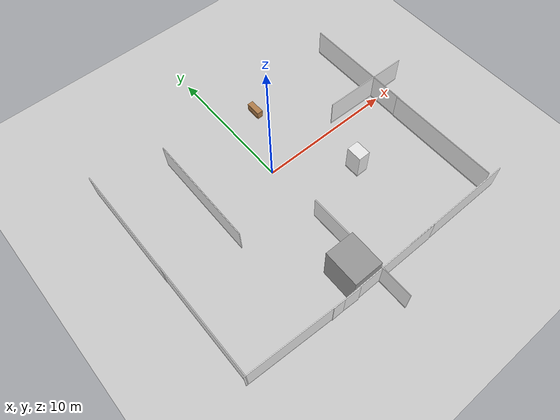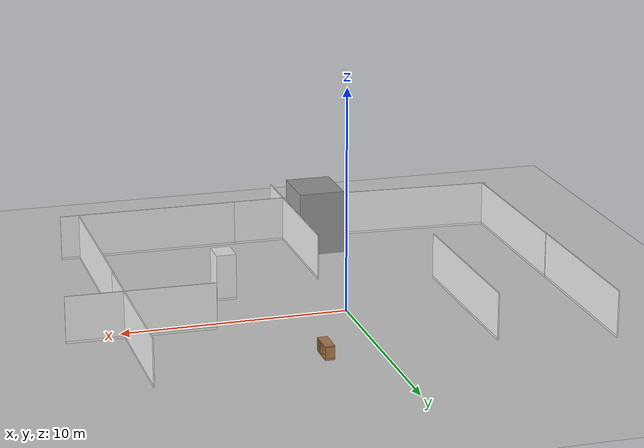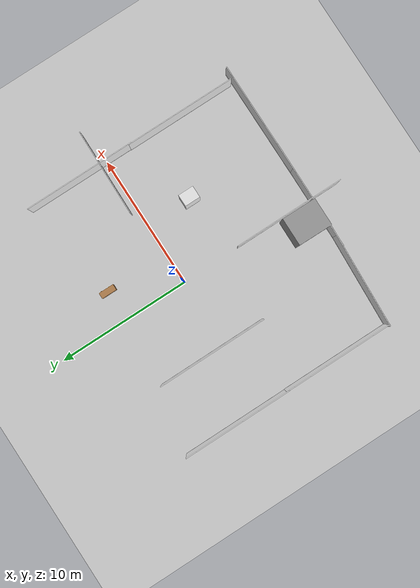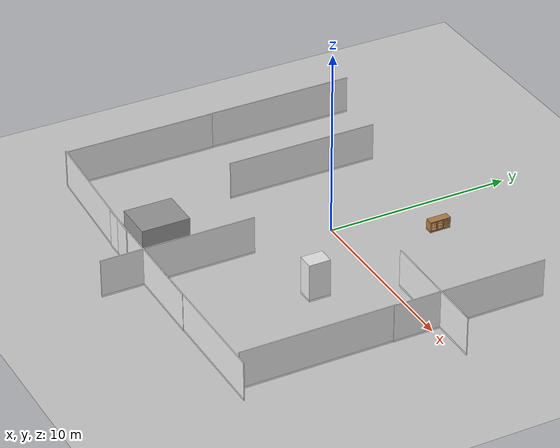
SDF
<sdf version="1.7">
 <world name="default">
  <model name="ground_plane">
   <static>1</static>
   <link name="link">
    <collision name="collision">
     <geometry><plane><normal>0 0 1</normal><size>100 100</size></plane></geometry>
     <surface><friction><ode><mu>100</mu><mu2>50</mu2></ode></friction></surface>
    </collision>
    <visual name="visual">
     <cast_shadows>0</cast_shadows>
     <geometry><plane><normal>0 0 1</normal><size>100 100</size></plane></geometry>
     <material>
      <script><uri>file://media/materials/scripts/gazebo.material</uri><name>Gazebo/Grey</name></script>
     </material>
    </visual>
   </link>
  </model>
  <model name="full_wall_55_8295_2090">
   <link name="link">
    <inertial>
     <mass>50</mass>
     <inertia><ixx>1</ixx><ixy>0</ixy><ixz>0</ixz><iyy>1</iyy><iyz>0</iyz><izz>1</izz></inertia>
    </inertial>
    <visual name="bottom_frame">
     <pose>0 0 0.05 0 -0 0</pose>
     <geometry><box><size>0.055 8.295 0.1</size></box></geometry>
     <material>
      <script><uri>model://base_materials/color/scripts</uri><name>hsr_color/white</name></script>
     </material>
    </visual>
    <collision name="collision_bottom_frame">
     <pose>0 0 0.05 0 -0 0</pose>
     <geometry><box><size>0.055 8.295 0.1</size></box></geometry>
    </collision>
    <visual name="wall">
     <pose>0 0 1.095 0 -0 0</pose>
     <geometry><box><size>0.055 8.295 1.99</size></box></geometry>
     <material>
      <script>
       <uri>model://base_materials/wall/scripts</uri>
       <uri>model://base_materials/wall/textures</uri>
       <name>wall/white_noise</name>
      </script>
     </material>
    </visual>
    <collision name="collision_wall">
     <pose>0 0 1.095 0 -0 0</pose>
     <geometry><box><size>0.055 8.295 1.99</size></box></geometry>
    </collision>
    <velocity_decay><linear>0</linear><angular>0</angular></velocity_decay>
   </link>
   <static>1</static>
   <pose>9.84628 -6.03744 0 0 -0 0</pose>
  </model>
  <model name="full_wall_55_8295_2090_0">
   <link name="link">
    <inertial>
     <mass>50</mass>
     <inertia><ixx>1</ixx><ixy>0</ixy><ixz>0</ixz><iyy>1</iyy><iyz>0</iyz><izz>1</izz></inertia>
    </inertial>
    <visual name="bottom_frame">
     <pose>0 0 0.05 0 -0 0</pose>
     <geometry><box><size>0.055 8.295 0.1</size></box></geometry>
     <material>
      <script><uri>model://base_materials/color/scripts</uri><name>hsr_color/white</name></script>
     </material>
    </visual>
    <collision name="collision_bottom_frame">
     <pose>0 0 0.05 0 -0 0</pose>
     <geometry><box><size>0.055 8.295 0.1</size></box></geometry>
    </collision>
    <visual name="wall">
     <pose>0 0 1.095 0 -0 0</pose>
     <geometry><box><size>0.055 8.295 1.99</size></box></geometry>
     <material>
      <script>
       <uri>model://base_materials/wall/scripts</uri>
       <uri>model://base_materials/wall/textures</uri>
       <name>wall/white_noise</name>
      </script>
     </material>
    </visual>
    <collision name="collision_wall">
     <pose>0 0 1.095 0 -0 0</pose>
     <geometry><box><size>0.055 8.295 1.99</size></box></geometry>
    </collision>
    <velocity_decay><linear>0</linear><angular>0</angular></velocity_decay>
   </link>
   <static>1</static>
   <pose>-9.9613 -5.86191 0 0 -0 0</pose>
  </model>
  <model name="full_wall_55_8295_2090_1">
   <link name="link">
    <inertial>
     <mass>50</mass>
     <inertia><ixx>1</ixx><ixy>0</ixy><ixz>0</ixz><iyy>1</iyy><iyz>0</iyz><izz>1</izz></inertia>
    </inertial>
    <visual name="bottom_frame">
     <pose>0 0 0.05 0 -0 0</pose>
     <geometry><box><size>0.055 8.295 0.1</size></box></geometry>
     <material>
      <script><uri>model://base_materials/color/scripts</uri><name>hsr_color/white</name></script>
     </material>
    </visual>
    <collision name="collision_bottom_frame">
     <pose>0 0 0.05 0 -0 0</pose>
     <geometry><box><size>0.055 8.295 0.1</size></box></geometry>
    </collision>
    <visual name="wall">
     <pose>0 0 1.095 0 -0 0</pose>
     <geometry><box><size>0.055 8.295 1.99</size></box></geometry>
     <material>
      <script>
       <uri>model://base_materials/wall/scripts</uri>
       <uri>model://base_materials/wall/textures</uri>
       <name>wall/white_noise</name>
      </script>
     </material>
    </visual>
    <collision name="collision_wall">
     <pose>0 0 1.095 0 -0 0</pose>
     <geometry><box><size>0.055 8.295 1.99</size></box></geometry>
    </collision>
    <velocity_decay><linear>0</linear><angular>0</angular></velocity_decay>
   </link>
   <static>1</static>
   <pose>9.87734 2.07434 0 0 -0 0</pose>
  </model>
  <model name="full_wall_55_8295_2090_2">
   <link name="link">
    <inertial>
     <mass>50</mass>
     <inertia><ixx>1</ixx><ixy>0</ixy><ixz>0</ixz><iyy>1</iyy><iyz>0</iyz><izz>1</izz></inertia>
    </inertial>
    <visual name="bottom_frame">
     <pose>0 0 0.05 0 -0 0</pose>
     <geometry><box><size>0.055 8.295 0.1</size></box></geometry>
     <material>
      <script><uri>model://base_materials/color/scripts</uri><name>hsr_color/white</name></script>
     </material>
    </visual>
    <collision name="collision_bottom_frame">
     <pose>0 0 0.05 0 -0 0</pose>
     <geometry><box><size>0.055 8.295 0.1</size></box></geometry>
    </collision>
    <visual name="wall">
     <pose>0 0 1.095 0 -0 0</pose>
     <geometry><box><size>0.055 8.295 1.99</size></box></geometry>
     <material>
      <script>
       <uri>model://base_materials/wall/scripts</uri>
       <uri>model://base_materials/wall/textures</uri>
       <name>wall/white_noise</name>
      </script>
     </material>
    </visual>
    <collision name="collision_wall">
     <pose>0 0 1.095 0 -0 0</pose>
     <geometry><box><size>0.055 8.295 1.99</size></box></geometry>
    </collision>
    <velocity_decay><linear>0</linear><angular>0</angular></velocity_decay>
   </link>
   <static>1</static>
   <pose>-9.98318 2.18072 0 0 -0 0</pose>
  </model>
  <model name="full_wall_55_8295_2090_3">
   <link name="link">
    <inertial>
     <mass>50</mass>
     <inertia><ixx>1</ixx><ixy>0</ixy><ixz>0</ixz><iyy>1</iyy><iyz>0</iyz><izz>1</izz></inertia>
    </inertial>
    <visual name="bottom_frame">
     <pose>0 0 0.05 0 -0 0</pose>
     <geometry><box><size>0.055 8.295 0.1</size></box></geometry>
     <material>
      <script><uri>model://base_materials/color/scripts</uri><name>hsr_color/white</name></script>
     </material>
    </visual>
    <collision name="collision_bottom_frame">
     <pose>0 0 0.05 0 -0 0</pose>
     <geometry><box><size>0.055 8.295 0.1</size></box></geometry>
    </collision>
    <visual name="wall">
     <pose>0 0 1.095 0 -0 0</pose>
     <geometry><box><size>0.055 8.295 1.99</size></box></geometry>
     <material>
      <script>
       <uri>model://base_materials/wall/scripts</uri>
       <uri>model://base_materials/wall/textures</uri>
       <name>wall/white_noise</name>
      </script>
     </material>
    </visual>
    <collision name="collision_wall">
     <pose>0 0 1.095 0 -0 0</pose>
     <geometry><box><size>0.055 8.295 1.99</size></box></geometry>
    </collision>
    <velocity_decay><linear>0</linear><angular>0</angular></velocity_decay>
   </link>
   <static>1</static>
   <pose>-5.95162 -10.1806 0 0 0 -1.62137</pose>
  </model>
  <model name="full_wall_55_8295_2090_4">
   <link name="link">
    <inertial>
     <mass>50</mass>
     <inertia><ixx>1</ixx><ixy>0</ixy><ixz>0</ixz><iyy>1</iyy><iyz>0</iyz><izz>1</izz></inertia>
    </inertial>
    <visual name="bottom_frame">
     <pose>0 0 0.05 0 -0 0</pose>
     <geometry><box><size>0.055 8.295 0.1</size></box></geometry>
     <material>
      <script><uri>model://base_materials/color/scripts</uri><name>hsr_color/white</name></script>
     </material>
    </visual>
    <collision name="collision_bottom_frame">
     <pose>0 0 0.05 0 -0 0</pose>
     <geometry><box><size>0.055 8.295 0.1</size></box></geometry>
    </collision>
    <visual name="wall">
     <pose>0 0 1.095 0 -0 0</pose>
     <geometry><box><size>0.055 8.295 1.99</size></box></geometry>
     <material>
      <script>
       <uri>model://base_materials/wall/scripts</uri>
       <uri>model://base_materials/wall/textures</uri>
       <name>wall/white_noise</name>
      </script>
     </material>
    </visual>
    <collision name="collision_wall">
     <pose>0 0 1.095 0 -0 0</pose>
     <geometry><box><size>0.055 8.295 1.99</size></box></geometry>
    </collision>
    <velocity_decay><linear>0</linear><angular>0</angular></velocity_decay>
   </link>
   <static>1</static>
   <pose>0.287019 -10.3536 0 0 -0 1.56373</pose>
  </model>
  <model name="full_wall_55_8295_2090_5">
   <link name="link">
    <inertial>
     <mass>50</mass>
     <inertia><ixx>1</ixx><ixy>0</ixy><ixz>0</ixz><iyy>1</iyy><iyz>0</iyz><izz>1</izz></inertia>
    </inertial>
    <visual name="bottom_frame">
     <pose>0 0 0.05 0 -0 0</pose>
     <geometry><box><size>0.055 8.295 0.1</size></box></geometry>
     <material>
      <script><uri>model://base_materials/color/scripts</uri><name>hsr_color/white</name></script>
     </material>
    </visual>
    <collision name="collision_bottom_frame">
     <pose>0 0 0.05 0 -0 0</pose>
     <geometry><box><size>0.055 8.295 0.1</size></box></geometry>
    </collision>
    <visual name="wall">
     <pose>0 0 1.095 0 -0 0</pose>
     <geometry><box><size>0.055 8.295 1.99</size></box></geometry>
     <material>
      <script>
       <uri>model://base_materials/wall/scripts</uri>
       <uri>model://base_materials/wall/textures</uri>
       <name>wall/white_noise</name>
      </script>
     </material>
    </visual>
    <collision name="collision_wall">
     <pose>0 0 1.095 0 -0 0</pose>
     <geometry><box><size>0.055 8.295 1.99</size></box></geometry>
    </collision>
    <velocity_decay><linear>0</linear><angular>0</angular></velocity_decay>
   </link>
   <static>1</static>
   <pose>6.56133 -10.3648 0 0 0 -1.57045</pose>
  </model>
  <model name="full_wall_55_6475_2090_1">
   <link name="link">
    <inertial>
     <mass>50</mass>
     <inertia><ixx>1</ixx><ixy>0</ixy><ixz>0</ixz><iyy>1</iyy><iyz>0</iyz><izz>1</izz></inertia>
    </inertial>
    <visual name="bottom_frame">
     <pose>0 0 0.05 0 -0 0</pose>
     <geometry><box><size>0.055 6.475 0.1</size></box></geometry>
     <material>
      <script><uri>model://base_materials/color/scripts</uri><name>hsr_color/white</name></script>
     </material>
    </visual>
    <collision name="collision_bottom_frame">
     <pose>0 0 0.05 0 -0 0</pose>
     <geometry><box><size>0.055 6.475 0.1</size></box></geometry>
    </collision>
    <visual name="wall">
     <pose>0 0 1.095 0 -0 0</pose>
     <geometry><box><size>0.055 6.475 1.99</size></box></geometry>
     <material>
      <script>
       <uri>model://base_materials/wall/scripts</uri>
       <uri>model://base_materials/wall/textures</uri>
       <name>wall/white_noise</name>
      </script>
     </material>
    </visual>
    <collision name="collision_wall">
     <pose>0 0 1.095 0 -0 0</pose>
     <geometry><box><size>0.055 6.475 1.99</size></box></geometry>
    </collision>
    <velocity_decay><linear>0</linear><angular>0</angular></velocity_decay>
   </link>
   <static>1</static>
   <pose>9.15817 0.489889 0 0 -0 1.5553</pose>
  </model>
  <model name="full_wall_55_8295_2090_10">
   <link name="link">
    <inertial>
     <mass>50</mass>
     <inertia><ixx>1</ixx><ixy>0</ixy><ixz>0</ixz><iyy>1</iyy><iyz>0</iyz><izz>1</izz></inertia>
    </inertial>
    <visual name="bottom_frame">
     <pose>0 0 0.05 0 -0 0</pose>
     <geometry><box><size>0.055 8.295 0.1</size></box></geometry>
     <material>
      <script><uri>model://base_materials/color/scripts</uri><name>hsr_color/white</name></script>
     </material>
    </visual>
    <collision name="collision_bottom_frame">
     <pose>0 0 0.05 0 -0 0</pose>
     <geometry><box><size>0.055 8.295 0.1</size></box></geometry>
    </collision>
    <visual name="wall">
     <pose>0 0 1.095 0 -0 0</pose>
     <geometry><box><size>0.055 8.295 1.99</size></box></geometry>
     <material>
      <script>
       <uri>model://base_materials/wall/scripts</uri>
       <uri>model://base_materials/wall/textures</uri>
       <name>wall/white_noise</name>
      </script>
     </material>
    </visual>
    <collision name="collision_wall">
     <pose>0 0 1.095 0 -0 0</pose>
     <geometry><box><size>0.055 8.295 1.99</size></box></geometry>
    </collision>
    <velocity_decay><linear>0</linear><angular>0</angular></velocity_decay>
   </link>
   <static>1</static>
   <pose>0.014205 -8.48633 0 0 -0 0</pose>
  </model>
  <model name="full_wall_55_8295_2090_11">
   <link name="link">
    <inertial>
     <mass>50</mass>
     <inertia><ixx>1</ixx><ixy>0</ixy><ixz>0</ixz><iyy>1</iyy><iyz>0</iyz><izz>1</izz></inertia>
    </inertial>
    <visual name="bottom_frame">
     <pose>0 0 0.05 0 -0 0</pose>
     <geometry><box><size>0.055 8.295 0.1</size></box></geometry>
     <material>
      <script><uri>model://base_materials/color/scripts</uri><name>hsr_color/white</name></script>
     </material>
    </visual>
    <collision name="collision_bottom_frame">
     <pose>0 0 0.05 0 -0 0</pose>
     <geometry><box><size>0.055 8.295 0.1</size></box></geometry>
    </collision>
    <visual name="wall">
     <pose>0 0 1.095 0 -0 0</pose>
     <geometry><box><size>0.055 8.295 1.99</size></box></geometry>
     <material>
      <script>
       <uri>model://base_materials/wall/scripts</uri>
       <uri>model://base_materials/wall/textures</uri>
       <name>wall/white_noise</name>
      </script>
     </material>
    </visual>
    <collision name="collision_wall">
     <pose>0 0 1.095 0 -0 0</pose>
     <geometry><box><size>0.055 8.295 1.99</size></box></geometry>
    </collision>
    <velocity_decay><linear>0</linear><angular>0</angular></velocity_decay>
   </link>
   <static>1</static>
   <pose>-5.06381 1.03116 0 0 -0 0</pose>
  </model>
  <model name="unit_box">
   <pose>-1.17645 -9.03631 1.48483 -3e-06 -0 -0.007073</pose>
   <link name="link">
    <inertial>
     <mass>1</mass>
     <inertia>
      <ixx>0.166667</ixx>
      <ixy>0</ixy>
      <ixz>0</ixz>
      <iyy>0.166667</iyy>
      <iyz>0</iyz>
      <izz>0.166667</izz>
     </inertia>
    </inertial>
    <collision name="collision"><geometry><box><size>2.0992 2.5587 2.96967</size></box></geometry></collision>
    <visual name="visual">
     <geometry><box><size>2.0992 2.5587 2.96967</size></box></geometry>
     <material>
      <script><name>Gazebo/Grey</name><uri>file://media/materials/scripts/gazebo.material</uri></script>
     </material>
    </visual>
   </link>
  </model>
  <model name="living_sideboard">
   <link name="link">
    <inertial>
     <mass>10</mass>
     <inertia><ixx>1</ixx><ixy>0</ixy><ixz>0</ixz><iyy>1</iyy><iyz>0</iyz><izz>1</izz></inertia>
    </inertial>
    <visual name="left_board">
     <pose>-0.23 0.01 0.3375 0 -0 0</pose>
     <geometry><box><size>0.42 0.02 0.495</size></box></geometry>
     <material>
      <script><uri>model://base_materials/wood/scripts/wood.material</uri><name>base_materials/wood</name></script>
     </material>
    </visual>
    <collision name="collision_left_board">
     <pose>-0.23 0.01 0.3375 0 -0 0</pose>
     <geometry><box><size>0.42 0.02 0.495</size></box></geometry>
    </collision>
    <visual name="back_board">
     <pose>-0.42 0.575 0.2925 0 -0 0</pose>
     <geometry><box><size>0.02 1.11 0.585</size></box></geometry>
     <material>
      <script><uri>model://base_materials/wood/scripts/wood.material</uri><name>base_materials/wood</name></script>
     </material>
    </visual>
    <collision name="collision_back_board">
     <pose>-0.42 0.575 0.2925 0 -0 0</pose>
     <geometry><box><size>0.02 1.11 0.585</size></box></geometry>
    </collision>
    <visual name="right_board">
     <pose>-0.23 1.14 0.3375 0 -0 0</pose>
     <geometry><box><size>0.42 0.02 0.495</size></box></geometry>
     <material>
      <script><uri>model://base_materials/wood/scripts/wood.material</uri><name>base_materials/wood</name></script>
     </material>
    </visual>
    <collision name="collision_right_board">
     <pose>-0.23 1.14 0.3375 0 -0 0</pose>
     <geometry><box><size>0.42 0.02 0.495</size></box></geometry>
    </collision>
    <visual name="center_vertical_board1">
     <pose>-0.23 0.74 0.3375 0 -0 0</pose>
     <geometry><box><size>0.42 0.02 0.495</size></box></geometry>
     <material>
      <script><uri>model://base_materials/wood/scripts/wood.material</uri><name>base_materials/wood</name></script>
     </material>
    </visual>
    <collision name="collision_center_vertical_board1">
     <pose>-0.23 0.74 0.3375 0 -0 0</pose>
     <geometry><box><size>0.42 0.02 0.495</size></box></geometry>
    </collision>
    <visual name="top_board">
     <pose>-0.22 0.575 0.6 0 -0 0</pose>
     <geometry><box><size>0.44 1.15 0.03</size></box></geometry>
     <material>
      <script><uri>model://base_materials/wood/scripts/wood.material</uri><name>base_materials/wood</name></script>
     </material>
    </visual>
    <collision name="collision_top_board">
     <pose>-0.22 0.575 0.6 0 -0 0</pose>
     <geometry><box><size>0.44 1.15 0.03</size></box></geometry>
    </collision>
    <visual name="bottom_board">
     <pose>-0.23 0.575 0.045 0 -0 0</pose>
     <geometry><box><size>0.42 1.15 0.09</size></box></geometry>
     <material>
      <script><uri>model://base_materials/wood/scripts/wood.material</uri><name>base_materials/wood</name></script>
     </material>
    </visual>
    <collision name="collision_bottom_board">
     <pose>-0.23 0.575 0.045 0 -0 0</pose>
     <geometry><box><size>0.42 1.15 0.09</size></box></geometry>
    </collision>
    <visual name="1st_shelf">
     <pose>-0.225 0.37 0.259 0 -0 0</pose>
     <geometry><box><size>0.36 0.72 0.018</size></box></geometry>
     <material>
      <script><uri>model://base_materials/wood/scripts/wood.material</uri><name>base_materials/wood</name></script>
     </material>
    </visual>
    <collision name="collision_1st_shelf">
     <pose>-0.225 0.37 0.259 0 -0 0</pose>
     <geometry><box><size>0.36 0.72 0.018</size></box></geometry>
    </collision>
    <visual name="2nd_shelf">
     <pose>-0.225 0.37 0.407 0 -0 0</pose>
     <geometry><box><size>0.36 0.72 0.018</size></box></geometry>
     <material>
      <script><uri>model://base_materials/wood/scripts/wood.material</uri><name>base_materials/wood</name></script>
     </material>
    </visual>
    <collision name="collision_2nd_shelf">
     <pose>-0.225 0.37 0.407 0 -0 0</pose>
     <geometry><box><size>0.36 0.72 0.018</size></box></geometry>
    </collision>
    <visual name="1st_drawer">
     <pose>-0.2025 0.95 0.52 0 -0 0</pose>
     <geometry><box><size>0.405 0.38 0.13</size></box></geometry>
     <material>
      <script><uri>model://base_materials/wood/scripts/wood.material</uri><name>base_materials/wood</name></script>
     </material>
    </visual>
    <collision name="collision_1st_drawer">
     <pose>-0.2025 0.95 0.52 0 -0 0</pose>
     <geometry><box><size>0.405 0.38 0.13</size></box></geometry>
    </collision>
    <visual name="1st_drawer_handle_l1">
     <pose>0.015 0.9015 0.535 3.14159 1.57079 3.14159</pose>
     <geometry><cylinder><radius>0.006</radius><length>0.03</length></cylinder></geometry>
     <material>
      <ambient>1 0.84314 0 1</ambient>
      <diffuse>1 0.84314 0 1</diffuse>
      <specular>0.1 0.1 0.1 1</specular>
     </material>
    </visual>
    <collision name="collision_1st_drawer_handle_l1">
     <pose>0.015 0.9015 0.535 3.14159 1.57079 3.14159</pose>
     <geometry><cylinder><radius>0.006</radius><length>0.03</length></cylinder></geometry>
    </collision>
    <visual name="1st_drawer_handle_l2">
     <pose>0.03 0.9015 0.535 0 -0 0</pose>
     <geometry><sphere><radius>0.006</radius></sphere></geometry>
     <material>
      <ambient>1 0.84314 0 1</ambient>
      <diffuse>1 0.84314 0 1</diffuse>
      <specular>0.1 0.1 0.1 1</specular>
     </material>
    </visual>
    <collision name="collision_1st_drawer_handle_l2">
     <pose>0.03 0.9015 0.535 0 -0 0</pose>
     <geometry><sphere><radius>0.006</radius></sphere></geometry>
    </collision>
    <visual name="1st_drawer_handle_r1">
     <pose>0.015 0.9985 0.535 3.14159 1.57079 3.14159</pose>
     <geometry><cylinder><radius>0.006</radius><length>0.03</length></cylinder></geometry>
     <material>
      <ambient>1 0.84314 0 1</ambient>
      <diffuse>1 0.84314 0 1</diffuse>
      <specular>0.1 0.1 0.1 1</specular>
     </material>
    </visual>
    <collision name="collision_1st_drawer_handle_r1">
     <pose>0.015 0.9985 0.535 3.14159 1.57079 3.14159</pose>
     <geometry><cylinder><radius>0.006</radius><length>0.03</length></cylinder></geometry>
    </collision>
    <visual name="1st_drawer_handle_r2">
     <pose>0.03 0.9985 0.535 0 -0 0</pose>
     <geometry><sphere><radius>0.006</radius></sphere></geometry>
     <material>
      <ambient>1 0.84314 0 1</ambient>
      <diffuse>1 0.84314 0 1</diffuse>
      <specular>0.1 0.1 0.1 1</specular>
     </material>
    </visual>
    <collision name="collision_1st_drawer_handle_r2">
     <pose>0.03 0.9985 0.535 0 -0 0</pose>
     <geometry><sphere><radius>0.006</radius></sphere></geometry>
    </collision>
    <visual name="1st_drawer_handle_center">
     <pose>0.03 0.95 0.535 1.5708 -0 0</pose>
     <geometry><cylinder><radius>0.006</radius><length>0.097</length></cylinder></geometry>
     <material>
      <script><uri>model://base_materials/wood/scripts/wood.material</uri><name>base_materials/wood</name></script>
     </material>
    </visual>
    <collision name="collision_1st_drawer_handle_center">
     <pose>0.03 0.95 0.535 1.5708 -0 0</pose>
     <geometry><cylinder><radius>0.006</radius><length>0.097</length></cylinder></geometry>
    </collision>
    <visual name="2nd_drawer">
     <pose>-0.2025 0.95 0.37 0 -0 0</pose>
     <geometry><box><size>0.405 0.38 0.17</size></box></geometry>
     <material>
      <script><uri>model://base_materials/wood/scripts/wood.material</uri><name>base_materials/wood</name></script>
     </material>
    </visual>
    <collision name="collision_2nd_drawer">
     <pose>-0.2025 0.95 0.37 0 -0 0</pose>
     <geometry><box><size>0.405 0.38 0.17</size></box></geometry>
    </collision>
    <visual name="2nd_drawer_handle_l1">
     <pose>0.015 0.9015 0.405 3.14159 1.57079 3.14159</pose>
     <geometry><cylinder><radius>0.006</radius><length>0.03</length></cylinder></geometry>
     <material>
      <ambient>1 0.84314 0 1</ambient>
      <diffuse>1 0.84314 0 1</diffuse>
      <specular>0.1 0.1 0.1 1</specular>
     </material>
    </visual>
    <collision name="collision_2nd_drawer_handle_l1">
     <pose>0.015 0.9015 0.405 3.14159 1.57079 3.14159</pose>
     <geometry><cylinder><radius>0.006</radius><length>0.03</length></cylinder></geometry>
    </collision>
    <visual name="2nd_drawer_handle_l2">
     <pose>0.03 0.9015 0.405 0 -0 0</pose>
     <geometry><sphere><radius>0.006</radius></sphere></geometry>
     <material>
      <ambient>1 0.84314 0 1</ambient>
      <diffuse>1 0.84314 0 1</diffuse>
      <specular>0.1 0.1 0.1 1</specular>
     </material>
    </visual>
    <collision name="collision_2nd_drawer_handle_l2">
     <pose>0.03 0.9015 0.405 0 -0 0</pose>
     <geometry><sphere><radius>0.006</radius></sphere></geometry>
    </collision>
    <visual name="2nd_drawer_handle_r1">
     <pose>0.015 0.9985 0.405 3.14159 1.57079 3.14159</pose>
     <geometry><cylinder><radius>0.006</radius><length>0.03</length></cylinder></geometry>
     <material>
      <ambient>1 0.84314 0 1</ambient>
      <diffuse>1 0.84314 0 1</diffuse>
      <specular>0.1 0.1 0.1 1</specular>
     </material>
    </visual>
    <collision name="collision_2nd_drawer_handle_r1">
     <pose>0.015 0.9985 0.405 3.14159 1.57079 3.14159</pose>
     <geometry><cylinder><radius>0.006</radius><length>0.03</length></cylinder></geometry>
    </collision>
    <visual name="2nd_drawer_handle_r2">
     <pose>0.03 0.9985 0.405 0 -0 0</pose>
     <geometry><sphere><radius>0.006</radius></sphere></geometry>
     <material>
      <ambient>1 0.84314 0 1</ambient>
      <diffuse>1 0.84314 0 1</diffuse>
      <specular>0.1 0.1 0.1 1</specular>
     </material>
    </visual>
    <collision name="collision_2nd_drawer_handle_r2">
     <pose>0.03 0.9985 0.405 0 -0 0</pose>
     <geometry><sphere><radius>0.006</radius></sphere></geometry>
    </collision>
    <visual name="2nd_drawer_handle_center">
     <pose>0.03 0.95 0.405 1.5708 -0 0</pose>
     <geometry><cylinder><radius>0.006</radius><length>0.097</length></cylinder></geometry>
     <material>
      <script><uri>model://base_materials/wood/scripts/wood.material</uri><name>base_materials/wood</name></script>
     </material>
    </visual>
    <collision name="collision_2nd_drawer_handle_center">
     <pose>0.03 0.95 0.405 1.5708 -0 0</pose>
     <geometry><cylinder><radius>0.006</radius><length>0.097</length></cylinder></geometry>
    </collision>
    <visual name="3rd_drawer">
     <pose>-0.2025 0.95 0.18 0 -0 0</pose>
     <geometry><box><size>0.405 0.38 0.21</size></box></geometry>
     <material>
      <script><uri>model://base_materials/wood/scripts/wood.material</uri><name>base_materials/wood</name></script>
     </material>
    </visual>
    <collision name="collision_3rd_drawer">
     <pose>-0.2025 0.95 0.18 0 -0 0</pose>
     <geometry><box><size>0.405 0.38 0.21</size></box></geometry>
    </collision>
    <visual name="3rd_drawer_handle_l1">
     <pose>0.015 0.9015 0.235 3.14159 1.57079 3.14159</pose>
     <geometry><cylinder><radius>0.006</radius><length>0.03</length></cylinder></geometry>
     <material>
      <ambient>1 0.84314 0 1</ambient>
      <diffuse>1 0.84314 0 1</diffuse>
      <specular>0.1 0.1 0.1 1</specular>
     </material>
    </visual>
    <collision name="collision_3rd_drawer_handle_l1">
     <pose>0.015 0.9015 0.235 3.14159 1.57079 3.14159</pose>
     <geometry><cylinder><radius>0.006</radius><length>0.03</length></cylinder></geometry>
    </collision>
    <visual name="3rd_drawer_handle_l2">
     <pose>0.03 0.9015 0.235 0 -0 0</pose>
     <geometry><sphere><radius>0.006</radius></sphere></geometry>
     <material>
      <ambient>1 0.84314 0 1</ambient>
      <diffuse>1 0.84314 0 1</diffuse>
      <specular>0.1 0.1 0.1 1</specular>
     </material>
    </visual>
    <collision name="collision_3rd_drawer_handle_l2">
     <pose>0.03 0.9015 0.235 0 -0 0</pose>
     <geometry><sphere><radius>0.006</radius></sphere></geometry>
    </collision>
    <visual name="3rd_drawer_handle_r1">
     <pose>0.015 0.9985 0.235 3.14159 1.57079 3.14159</pose>
     <geometry><cylinder><radius>0.006</radius><length>0.03</length></cylinder></geometry>
     <material>
      <ambient>1 0.84314 0 1</ambient>
      <diffuse>1 0.84314 0 1</diffuse>
      <specular>0.1 0.1 0.1 1</specular>
     </material>
    </visual>
    <collision name="collision_3rd_drawer_handle_r1">
     <pose>0.015 0.9985 0.235 3.14159 1.57079 3.14159</pose>
     <geometry><cylinder><radius>0.006</radius><length>0.03</length></cylinder></geometry>
    </collision>
    <visual name="3rd_drawer_handle_r2">
     <pose>0.03 0.9985 0.235 0 -0 0</pose>
     <geometry><sphere><radius>0.006</radius></sphere></geometry>
     <material>
      <ambient>1 0.84314 0 1</ambient>
      <diffuse>1 0.84314 0 1</diffuse>
      <specular>0.1 0.1 0.1 1</specular>
     </material>
    </visual>
    <collision name="collision_3rd_drawer_handle_r2">
     <pose>0.03 0.9985 0.235 0 -0 0</pose>
     <geometry><sphere><radius>0.006</radius></sphere></geometry>
    </collision>
    <visual name="3rd_drawer_handle_center">
     <pose>0.03 0.95 0.235 1.5708 -0 0</pose>
     <geometry><cylinder><radius>0.006</radius><length>0.097</length></cylinder></geometry>
     <material>
      <script><uri>model://base_materials/wood/scripts/wood.material</uri><name>base_materials/wood</name></script>
     </material>
    </visual>
    <collision name="collision_3rd_drawer_handle_center">
     <pose>0.03 0.95 0.235 1.5708 -0 0</pose>
     <geometry><cylinder><radius>0.006</radius><length>0.097</length></cylinder></geometry>
    </collision>
    <visual name="left_door_left_frame">
     <pose>-0.01 0.025 0.3275 0 -0 0</pose>
     <geometry><box><size>0.02 0.05 0.405</size></box></geometry>
     <material>
      <script><uri>model://base_materials/wood/scripts/wood.material</uri><name>base_materials/wood</name></script>
     </material>
    </visual>
    <collision name="collision_left_door_left_frame">
     <pose>-0.01 0.025 0.3275 0 -0 0</pose>
     <geometry><box><size>0.02 0.05 0.405</size></box></geometry>
    </collision>
    <visual name="left_door_right_frame">
     <pose>-0.01 0.355 0.3275 0 -0 0</pose>
     <geometry><box><size>0.02 0.05 0.405</size></box></geometry>
     <material>
      <script><uri>model://base_materials/wood/scripts/wood.material</uri><name>base_materials/wood</name></script>
     </material>
    </visual>
    <collision name="collision_left_door_right_frame">
     <pose>-0.01 0.355 0.3275 0 -0 0</pose>
     <geometry><box><size>0.02 0.05 0.405</size></box></geometry>
    </collision>
    <visual name="left_door_handle_top1">
     <pose>0.015 0.355 0.4475 3.14159 1.57079 3.14159</pose>
     <geometry><cylinder><radius>0.006</radius><length>0.03</length></cylinder></geometry>
     <material>
      <ambient>1 0.84314 0 1</ambient>
      <diffuse>1 0.84314 0 1</diffuse>
      <specular>0.1 0.1 0.1 1</specular>
     </material>
    </visual>
    <collision name="collision_left_door_handle_top1">
     <pose>0.015 0.355 0.4475 3.14159 1.57079 3.14159</pose>
     <geometry><cylinder><radius>0.006</radius><length>0.03</length></cylinder></geometry>
    </collision>
    <visual name="left_door_handle_top2">
     <pose>0.03 0.355 0.4475 0 -0 0</pose>
     <geometry><sphere><radius>0.006</radius></sphere></geometry>
     <material>
      <ambient>1 0.84314 0 1</ambient>
      <diffuse>1 0.84314 0 1</diffuse>
      <specular>0.1 0.1 0.1 1</specular>
     </material>
    </visual>
    <collision name="collision_left_door_handle_top2">
     <pose>0.03 0.355 0.4475 0 -0 0</pose>
     <geometry><sphere><radius>0.006</radius></sphere></geometry>
    </collision>
    <visual name="left_door_handle_bottom1">
     <pose>0.015 0.355 0.3505 3.14159 1.57079 3.14159</pose>
     <geometry><cylinder><radius>0.006</radius><length>0.03</length></cylinder></geometry>
     <material>
      <ambient>1 0.84314 0 1</ambient>
      <diffuse>1 0.84314 0 1</diffuse>
      <specular>0.1 0.1 0.1 1</specular>
     </material>
    </visual>
    <collision name="collision_left_door_handle_bottom1">
     <pose>0.015 0.355 0.3505 3.14159 1.57079 3.14159</pose>
     <geometry><cylinder><radius>0.006</radius><length>0.03</length></cylinder></geometry>
    </collision>
    <visual name="left_door_handle_bottom2">
     <pose>0.03 0.355 0.3505 0 -0 0</pose>
     <geometry><sphere><radius>0.006</radius></sphere></geometry>
     <material>
      <ambient>1 0.84314 0 1</ambient>
      <diffuse>1 0.84314 0 1</diffuse>
      <specular>0.1 0.1 0.1 1</specular>
     </material>
    </visual>
    <collision name="collision_left_door_handle_bottom2">
     <pose>0.03 0.355 0.3505 0 -0 0</pose>
     <geometry><sphere><radius>0.006</radius></sphere></geometry>
    </collision>
    <visual name="left_door_handle_center">
     <pose>0.03 0.355 0.399 0 -0 0</pose>
     <geometry><cylinder><radius>0.006</radius><length>0.097</length></cylinder></geometry>
     <material>
      <script><uri>model://base_materials/wood/scripts/wood.material</uri><name>base_materials/wood</name></script>
     </material>
    </visual>
    <collision name="collision_left_door_handle_center">
     <pose>0.03 0.355 0.399 0 -0 0</pose>
     <geometry><cylinder><radius>0.006</radius><length>0.097</length></cylinder></geometry>
    </collision>
    <visual name="left_door_top_frame">
     <pose>-0.01 0.19 0.5575 0 -0 0</pose>
     <geometry><box><size>0.02 0.38 0.055</size></box></geometry>
     <material>
      <script><uri>model://base_materials/wood/scripts/wood.material</uri><name>base_materials/wood</name></script>
     </material>
    </visual>
    <collision name="collision_left_door_top_frame">
     <pose>-0.01 0.19 0.5575 0 -0 0</pose>
     <geometry><box><size>0.02 0.38 0.055</size></box></geometry>
    </collision>
    <visual name="left_door_bottom_frame">
     <pose>-0.01 0.19 0.1 0 -0 0</pose>
     <geometry><box><size>0.02 0.38 0.05</size></box></geometry>
     <material>
      <script><uri>model://base_materials/wood/scripts/wood.material</uri><name>base_materials/wood</name></script>
     </material>
    </visual>
    <collision name="collision_left_door_bottom_frame">
     <pose>-0.01 0.19 0.1 0 -0 0</pose>
     <geometry><box><size>0.02 0.38 0.05</size></box></geometry>
    </collision>
    <visual name="right_door_left_frame">
     <pose>-0.01 0.405 0.3275 0 -0 0</pose>
     <geometry><box><size>0.02 0.05 0.405</size></box></geometry>
     <material>
      <script><uri>model://base_materials/wood/scripts/wood.material</uri><name>base_materials/wood</name></script>
     </material>
    </visual>
    <collision name="collision_right_door_left_frame">
     <pose>-0.01 0.405 0.3275 0 -0 0</pose>
     <geometry><box><size>0.02 0.05 0.405</size></box></geometry>
    </collision>
    <visual name="right_door_right_frame">
     <pose>-0.01 0.735 0.3275 0 -0 0</pose>
     <geometry><box><size>0.02 0.05 0.405</size></box></geometry>
     <material>
      <script><uri>model://base_materials/wood/scripts/wood.material</uri><name>base_materials/wood</name></script>
     </material>
    </visual>
    <collision name="collision_right_door_right_frame">
     <pose>-0.01 0.735 0.3275 0 -0 0</pose>
     <geometry><box><size>0.02 0.05 0.405</size></box></geometry>
    </collision>
    <visual name="right_door_top_frame">
     <pose>-0.01 0.57 0.5575 0 -0 0</pose>
     <geometry><box><size>0.02 0.38 0.055</size></box></geometry>
     <material>
      <script><uri>model://base_materials/wood/scripts/wood.material</uri><name>base_materials/wood</name></script>
     </material>
    </visual>
    <collision name="collision_right_door_top_frame">
     <pose>-0.01 0.57 0.5575 0 -0 0</pose>
     <geometry><box><size>0.02 0.38 0.055</size></box></geometry>
    </collision>
    <visual name="right_door_bottom_frame">
     <pose>-0.01 0.57 0.1 0 -0 0</pose>
     <geometry><box><size>0.02 0.38 0.05</size></box></geometry>
     <material>
      <script><uri>model://base_materials/wood/scripts/wood.material</uri><name>base_materials/wood</name></script>
     </material>
    </visual>
    <collision name="collision_right_door_bottom_frame">
     <pose>-0.01 0.57 0.1 0 -0 0</pose>
     <geometry><box><size>0.02 0.38 0.05</size></box></geometry>
    </collision>
    <visual name="right_door_handle_top1">
     <pose>0.015 0.405 0.4475 3.14159 1.57079 3.14159</pose>
     <geometry><cylinder><radius>0.006</radius><length>0.03</length></cylinder></geometry>
     <material>
      <ambient>1 0.84314 0 1</ambient>
      <diffuse>1 0.84314 0 1</diffuse>
      <specular>0.1 0.1 0.1 1</specular>
     </material>
    </visual>
    <collision name="collision_right_door_handle_top1">
     <pose>0.015 0.405 0.4475 3.14159 1.57079 3.14159</pose>
     <geometry><cylinder><radius>0.006</radius><length>0.03</length></cylinder></geometry>
    </collision>
    <visual name="right_door_handle_top2">
     <pose>0.03 0.405 0.4475 0 -0 0</pose>
     <geometry><sphere><radius>0.006</radius></sphere></geometry>
     <material>
      <ambient>1 0.84314 0 1</ambient>
      <diffuse>1 0.84314 0 1</diffuse>
      <specular>0.1 0.1 0.1 1</specular>
     </material>
    </visual>
    <collision name="collision_right_door_handle_top2">
     <pose>0.03 0.405 0.4475 0 -0 0</pose>
     <geometry><sphere><radius>0.006</radius></sphere></geometry>
    </collision>
    <visual name="right_door_handle_bottom1">
     <pose>0.015 0.405 0.3505 3.14159 1.57079 3.14159</pose>
     <geometry><cylinder><radius>0.006</radius><length>0.03</length></cylinder></geometry>
     <material>
      <ambient>1 0.84314 0 1</ambient>
      <diffuse>1 0.84314 0 1</diffuse>
      <specular>0.1 0.1 0.1 1</specular>
     </material>
    </visual>
    <collision name="collision_right_door_handle_bottom1">
     <pose>0.015 0.405 0.3505 3.14159 1.57079 3.14159</pose>
     <geometry><cylinder><radius>0.006</radius><length>0.03</length></cylinder></geometry>
    </collision>
    <visual name="right_door_handle_bottom2">
     <pose>0.03 0.405 0.3505 0 -0 0</pose>
     <geometry><sphere><radius>0.006</radius></sphere></geometry>
     <material>
      <ambient>1 0.84314 0 1</ambient>
      <diffuse>1 0.84314 0 1</diffuse>
      <specular>0.1 0.1 0.1 1</specular>
     </material>
    </visual>
    <collision name="collision_right_door_handle_bottom2">
     <pose>0.03 0.405 0.3505 0 -0 0</pose>
     <geometry><sphere><radius>0.006</radius></sphere></geometry>
    </collision>
    <visual name="right_door_handle_center">
     <pose>0.03 0.405 0.399 0 -0 0</pose>
     <geometry><cylinder><radius>0.006</radius><length>0.097</length></cylinder></geometry>
     <material>
      <script><uri>model://base_materials/wood/scripts/wood.material</uri><name>base_materials/wood</name></script>
     </material>
    </visual>
    <collision name="collision_right_door_handle_center">
     <pose>0.03 0.4 0.399 0 -0 0</pose>
     <geometry><cylinder><radius>0.006</radius><length>0.097</length></cylinder></geometry>
    </collision>
    <velocity_decay><linear>0</linear><angular>0</angular></velocity_decay>
   </link>
   <static>1</static>
   <pose>2.56595 4.23862 0 0 -0 0</pose>
  </model>
  <model name="full_wall_890_1160_2090">
   <link name="link">
    <inertial>
     <mass>50</mass>
     <inertia><ixx>1</ixx><ixy>0</ixy><ixz>0</ixz><iyy>1</iyy><iyz>0</iyz><izz>1</izz></inertia>
    </inertial>
    <visual name="bottom_frame">
     <pose>0 0 0.05 0 -0 0</pose>
     <geometry><box><size>0.89 1.16 0.1</size></box></geometry>
     <material>
      <script><uri>model://base_materials/color/scripts</uri><name>hsr_color/white</name></script>
     </material>
    </visual>
    <collision name="collision_bottom_frame">
     <pose>0 0 0.05 0 -0 0</pose>
     <geometry><box><size>0.89 1.16 0.1</size></box></geometry>
    </collision>
    <visual name="wall">
     <pose>0 0 1.095 0 -0 0</pose>
     <geometry><box><size>0.89 1.16 1.99</size></box></geometry>
     <material>
      <script>
       <uri>model://base_materials/wall/scripts</uri>
       <uri>model://base_materials/wall/textures</uri>
       <name>wall/white_noise</name>
      </script>
     </material>
    </visual>
    <collision name="collision_wall">
     <pose>0 0 1.095 0 -0 0</pose>
     <geometry><box><size>0.89 1.16 1.99</size></box></geometry>
    </collision>
    <velocity_decay><linear>0</linear><angular>0</angular></velocity_decay>
   </link>
   <static>1</static>
   <pose>4.65552 -3.41637 0 0 -0 0</pose>
  </model>
 </world>
</sdf>
